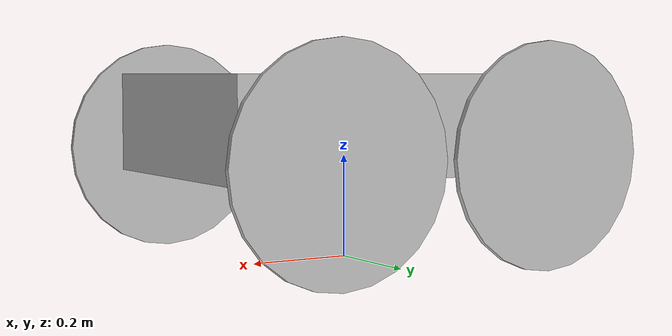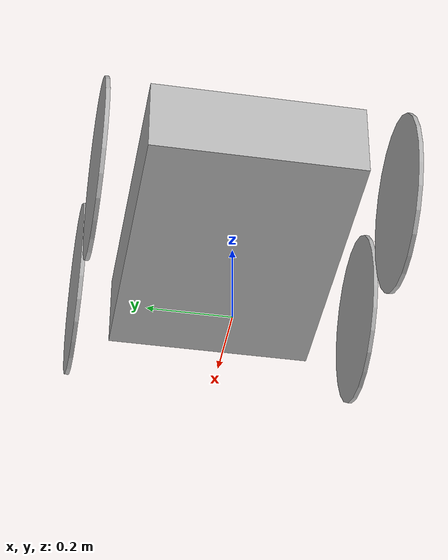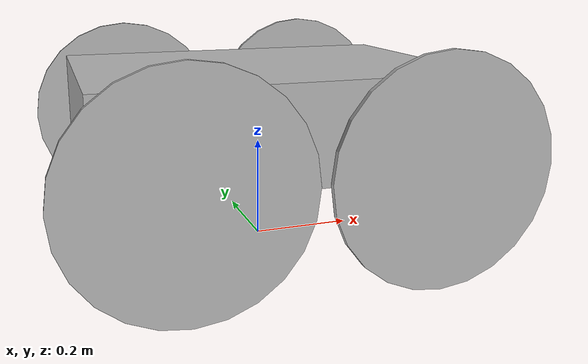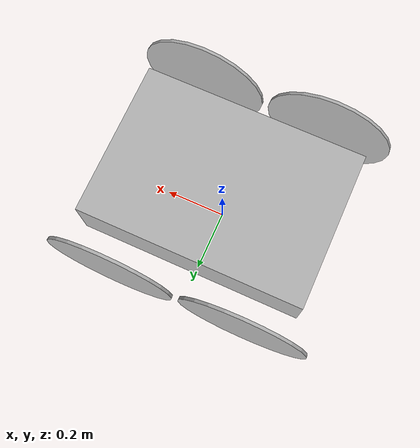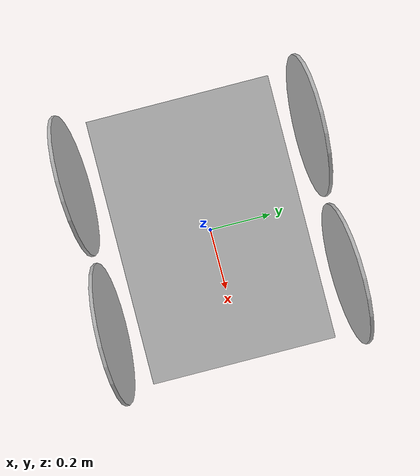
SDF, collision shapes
<?xml version="1.0"?>
<sdf version="1.8">
  <model name="rover">
    <link name="base_footprint" />

    <joint name="base_joint" type="fixed">
      <parent>base_footprint</parent>
      <child>base_link</child>
      <pose>0 0 0.21 0 0 0</pose>
    </joint>

    <link name="base_link">
    <inertial>
      <mass>40.0</mass>
      <pose>0 0 0.21 0 0 0</pose>
      <inertia>
        <ixx>1.848333</ixx>
        <ixy>0.0</ixy>
        <ixz>0.0</ixz>
        <iyy>2.561333</iyy>
        <iyz>0.0</iyz>
        <izz>0.953667</izz>
      </inertia>
    </inertial>
    <collision name="base_collision">
      <pose>0 0 0.265 0 0 0</pose>
      <geometry>
      <box>
        <size>0.72 0.50 0.19</size>
      </box>
      </geometry>
    </collision>
    <visual name="base_visual">
      <pose>0 0 0.21 0 0 3.141592654</pose>
      <geometry>
        <mesh>
          <uri>RoverBase.dae</uri>
        </mesh>
      </geometry>
    </visual>
    </link>

    <joint name="fl_wheel_joint" type="revolute">
      <parent>base_link</parent>
      <child>fl_wheel_link</child>
      <pose>0.22 0.35 0.21 0 0 0</pose>
      <axis>
        <xyz>0 1 0</xyz>
        <dynamics>
          <friction>0.001</friction>
          <spring_reference>0</spring_reference>
          <spring_stiffnes>0</spring_stiffnes>
        </dynamics>
      </axis>
    </joint>

    <joint name="fr_wheel_joint" type="revolute">
      <parent>base_link</parent>
      <child>fr_wheel_link</child>
      <pose>0.22 -0.35 0.21 0 0 0</pose>
      <axis>
        <xyz>0 1 0</xyz>
        <dynamics>
          <friction>0.001</friction>
          <spring_reference>0</spring_reference>
          <spring_stiffnes>0</spring_stiffnes>
        </dynamics>
      </axis>
    </joint>

    <joint name="rl_wheel_joint" type="revolute">
      <parent>base_link</parent>
      <child>rl_wheel_link</child>
      <pose>-0.22 0.35 0.21 0 0 0</pose>
      <axis>
        <xyz>0 1 0</xyz>
        <dynamics>
          <friction>0.001</friction>
          <spring_reference>0</spring_reference>
          <spring_stiffnes>0</spring_stiffnes>
        </dynamics>
      </axis>
    </joint>

    <joint name="rr_wheel_joint" type="revolute">
      <parent>base_link</parent>
      <child>rr_wheel_link</child>
      <pose>-0.22 -0.35 0.21 0 0 0</pose>
      <axis>
        <xyz>0 1 0</xyz>
        <dynamics>
          <friction>0.001</friction>
          <spring_reference>0</spring_reference>
          <spring_stiffnes>0</spring_stiffnes>
        </dynamics>
      </axis>
    </joint>

    <link name="fl_wheel_link">
      <inertial>
        <mass>3.0</mass>
        <pose>0.22 0.35 0.21 1.57 0 0</pose>
        <inertia>
          <ixx>0.039475</ixx>
          <ixy>0.0</ixy>
          <ixz>0.0</ixz>
          <iyy>0.039475</iyy>
          <iyz>0.0</iyz>
          <izz>0.066150</izz>
        </inertia>
      </inertial>
      <collision name="fl_wheel_collision">
        <pose>0.22 0.35 0.21 1.57 0 0</pose>
        <geometry>
        <cylinder>
          <radius>0.21</radius>
          <length>0.01</length>
        </cylinder>
        </geometry>
      </collision>
      <visual name="fl_wheel_visual">
        <pose>0.22 0.35 0.21 0 0 0</pose>
        <geometry>
          <mesh>
            <uri>RoverWheel.dae</uri>
          </mesh>
        </geometry>
      </visual>
    </link>

    <link name="fr_wheel_link">
      <inertial>
        <mass>3.0</mass>
        <pose>0.22 -0.35 0.21 1.57 0 0</pose>
        <inertia>
          <ixx>0.039475</ixx>
          <ixy>0.0</ixy>
          <ixz>0.0</ixz>
          <iyy>0.039475</iyy>
          <iyz>0.0</iyz>
          <izz>0.066150</izz>
        </inertia>
      </inertial>
      <collision name="fr_wheel_collision">
        <pose>0.22 -0.35 0.21 1.57 0 0</pose>
        <geometry>
        <cylinder>
          <radius>0.21</radius>
          <length>0.01</length>
        </cylinder>
        </geometry>
      </collision>
      <visual name="fr_wheel_visual">
        <pose>0.22 -0.35 0.21 0 0 0</pose>
        <geometry>
          <mesh>
            <uri>RoverWheel.dae</uri>
          </mesh>
        </geometry>
      </visual>
    </link>

    <link name="rl_wheel_link">
      <inertial>
        <mass>3.0</mass>
        <pose>-0.22 0.35 0.21 1.57 0 0</pose>
        <inertia>
          <ixx>0.039475</ixx>
          <ixy>0.0</ixy>
          <ixz>0.0</ixz>
          <iyy>0.039475</iyy>
          <iyz>0.0</iyz>
          <izz>0.066150</izz>
          </inertia>
      </inertial>
      <collision name="rl_wheel_collision">
        <pose>-0.22 0.35 0.21 1.57 0 0</pose>
        <geometry>
        <cylinder>
          <radius>0.21</radius>
          <length>0.01</length>
        </cylinder>
        </geometry>
      </collision>
      <visual name="rl_wheel_visual">
        <pose>-0.22 0.35 0.21 0 0 0</pose>
        <geometry>
          <mesh>
            <uri>RoverWheel.dae</uri>
          </mesh>
        </geometry>
      </visual>
    </link>

    <link name="rr_wheel_link">
      <inertial>
        <mass>3.0</mass>
        <pose>-0.22 -0.35 0.21 1.57 0 0</pose>
        <inertia>
          <ixx>0.039475</ixx>
          <ixy>0.0</ixy>
          <ixz>0.0</ixz>
          <iyy>0.039475</iyy>
          <iyz>0.0</iyz>
          <izz>0.066150</izz>
        </inertia>
      </inertial>
      <collision name="rr_wheel_collision">
        <pose>-0.22 -0.35 0.21 1.57 0 0</pose>
        <geometry>
        <cylinder>
          <radius>0.21</radius>
          <length>0.01</length>
        </cylinder>
        </geometry>
      </collision>
      <visual name="rr_wheel_visual">
        <pose>-0.22 -0.35 0.21 0 0 0</pose>
        <geometry>
          <mesh>
            <uri>RoverWheel.dae</uri>
          </mesh>
        </geometry>
      </visual>
    </link>

    <!-- IMU -->
    <joint name="imu_joint" type="fixed">
      <parent>base_link</parent>
      <child>imu_link</child>
      <pose>0 0 0.21 0 0 0</pose>
      <axis>
        <xyz>0 0 1</xyz>
      </axis>
    </joint>

    <link name="imu_link">
      <inertial>
        <mass>0.125</mass>
        <pose>0 0 0.21 0 0 0</pose>
        <inertia>
          <ixx>0.001</ixx>
          <ixy>0.000</ixy>
          <ixz>0.000</ixz>
          <iyy>0.001</iyy>
          <iyz>0.000</iyz>
          <izz>0.001</izz>
        </inertia>
      </inertial>

      <sensor name="imu_sensor" type="imu">
        <always_on>true</always_on>
        <update_rate>100</update_rate>
        <topic>imu</topic>
        <gz_frame_id>imu_link</gz_frame_id>
        <imu>
          <angular_velocity>
            <x>
              <noise type="gaussian">
                <mean>0.0</mean>
                <stddev>2e-4</stddev>
              </noise>
            </x>
            <y>
              <noise type="gaussian">
                <mean>0.0</mean>
                <stddev>2e-4</stddev>
              </noise>
            </y>
            <z>
              <noise type="gaussian">
                <mean>0.0</mean>
                <stddev>2e-4</stddev>
              </noise>
            </z>
          </angular_velocity>
          <linear_acceleration>
            <x>
              <noise type="gaussian">
                <mean>0.0</mean>
                <stddev>1.7e-2</stddev>
              </noise>
            </x>
            <y>
              <noise type="gaussian">
                <mean>0.0</mean>
                <stddev>1.7e-2</stddev>
              </noise>
            </y>
            <z>
              <noise type="gaussian">
                <mean>0.0</mean>
                <stddev>1.7e-2</stddev>
              </noise>
            </z>
          </linear_acceleration>
        </imu>
      </sensor>
    </link>

    <!-- Lidar -->
    <joint name="scan_joint" type="fixed">
      <parent>base_link</parent>
      <child>scan_link</child>
      <pose>0 0 0.51 0 0 0</pose>
      <axis>
        <xyz>0 0 1</xyz>
      </axis>
    </joint>

    <link name="scan_link">
      <inertial>
        <mass>0.125</mass>
        <pose>0 0 0.51 0 0 0</pose>
        <inertia>
          <ixx>0.001</ixx>
          <ixy>0.000</ixy>
          <ixz>0.000</ixz>
          <iyy>0.001</iyy>
          <iyz>0.000</iyz>
          <izz>0.001</izz>
        </inertia>
      </inertial>

      <sensor name="gpu_lidar" type="gpu_lidar">
        <always_on>true</always_on>
        <update_rate>10</update_rate>
        <visualize>true</visualize>
        <topic>scan</topic>
        <pose>0 0 0.51 0 0 0</pose>
        <gz_frame_id>scan_link</gz_frame_id>
        <ray>
          <scan>
            <horizontal>
              <samples>360</samples>
              <resolution>1.0</resolution>
              <min_angle>0.00</min_angle>
              <max_angle>6.28</max_angle>
            </horizontal>
            <vertical>
              <samples>1</samples>
              <resolution>1.0</resolution>
              <min_angle>0.0</min_angle>
              <max_angle>0.0</max_angle>
            </vertical>
          </scan>
          <range>
            <min>0.10</min>
            <max>20.0</max>
            <resolution>0.01</resolution>
          </range>
          <noise>
            <type>gaussian</type>
            <mean>0.0</mean>
            <stddev>0.01</stddev>
          </noise>
        </ray>
      </sensor>
    </link>

    <!-- GPS -->
    <joint name="gps_joint" type="fixed">
      <parent>base_link</parent>
      <child>gps_link</child>
      <pose>0 0 0.31 0 0 0</pose>
      <axis>
        <xyz>0 0 1</xyz>
      </axis>
    </joint>

    <link name="gps_link">
      <inertial>
        <mass>0.1</mass>
        <pose>0 0 0.31 0 0 0</pose>
        <inertia>
          <ixx>0.000166667</ixx>
          <iyy>0.000166667</iyy>
          <izz>0.000166667</izz>
        </inertia>
      </inertial>

      <sensor name="navsat" type="navsat">
        <always_on>true</always_on>
        <update_rate>1</update_rate>
        <topic>gps/fix</topic>
        <pose>0 0 0.31 0 0 0</pose>
        <gz_frame_id>gps_link</gz_frame_id>
      </sensor>
    </link>

    <!-- Camera -->
    <joint name="camera_joint" type="fixed">
      <parent>base_link</parent>
      <child>camera_link</child>
      <pose>0.4 0 0.31 0 0 0</pose>
      <axis>
        <xyz>0 0 1</xyz>
      </axis>
    </joint>

    <link name="camera_link">
      <inertial>
        <mass>0.1</mass>
        <pose>0.4 0 0.31 0 0 0</pose>
        <inertia>
          <ixx>0.000166667</ixx>
          <iyy>0.000166667</iyy>
          <izz>0.000166667</izz>
        </inertia>
      </inertial>

      <sensor name="camera" type="camera">
        <always_on>true</always_on>
        <visualize>true</visualize>
        <update_rate>30</update_rate>
        <topic>camera/front/image_raw</topic>
        <gz_frame_id>camera_link</gz_frame_id>

        <camera name="intel_realsense_r200">
          <camera_info_topic>camera/front/camera_info</camera_info_topic>
          <horizontal_fov>1.02974</horizontal_fov>
          <image>
            <width>320</width>
            <height>240</height>
            <format>R8G8B8</format>
          </image>
          <clip>
            <near>0.02</near>
            <far>300</far>
          </clip>
          <noise>
            <type>gaussian</type>
            <mean>0.0</mean>
            <stddev>0.007</stddev>
          </noise>
        </camera>
      </sensor>
    </link>

    <!-- https://gazebosim.org/api/gazebo/6/classignition_1_1gazebo_1_1systems_1_1DiffDrive.html -->
    <plugin
      filename="libignition-gazebo-diff-drive-system.so"
      name="ignition::gazebo::systems::DiffDrive">
      <!-- wheels -->
      <left_joint>fl_wheel_joint</left_joint>
      <right_joint>fr_wheel_joint</right_joint>
      <left_joint>rl_wheel_joint</left_joint>
      <right_joint>rr_wheel_joint</right_joint>
      <!-- kinematics -->
      <wheel_separation>0.70</wheel_separation>
      <wheel_radius>0.21</wheel_radius>
      <!-- limits -->
      <max_acceleration>1.5</max_acceleration>
      <!-- input -->
      <topic>/cmd_vel</topic>
      <!-- output -->
      <odom_topic>/odom</odom_topic>
      <tf_topic>/tf</tf_topic>
      <!-- origin and target of the odometry transformation -->
      <frame_id>odom</frame_id>
      <child_frame_id>base_footprint</child_frame_id>
    </plugin>

    <!-- RViz2 is not able to display non-fixed joints (i.e. the wheel joints)
         unless the state of the joints are published -->
    <plugin
      filename="ignition-gazebo-joint-state-publisher-system"
      name="ignition::gazebo::systems::JointStatePublisher">
      <topic>joint_states</topic>
    </plugin>
  </model>
</sdf>
